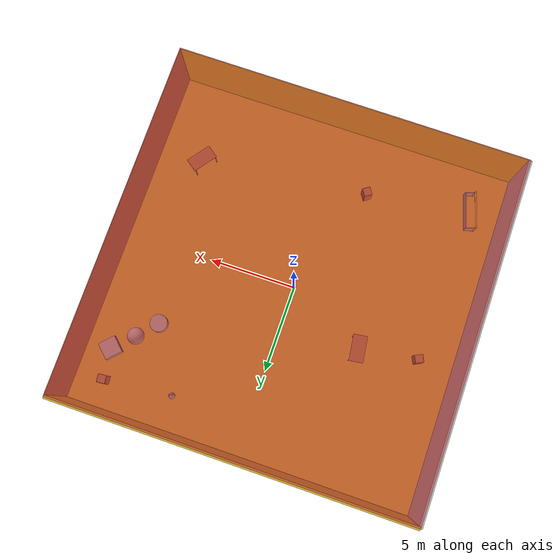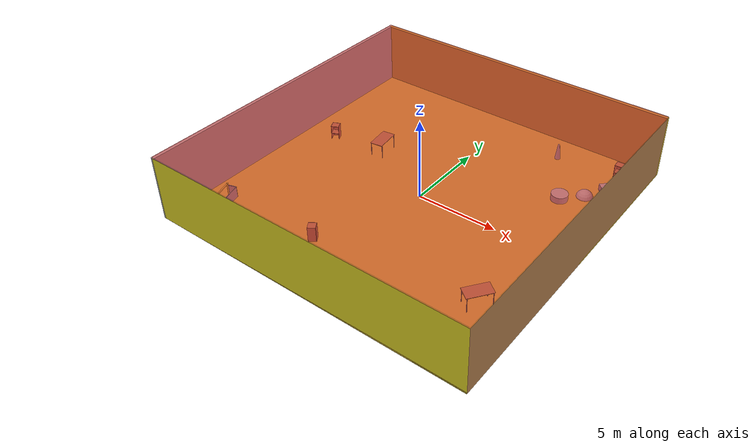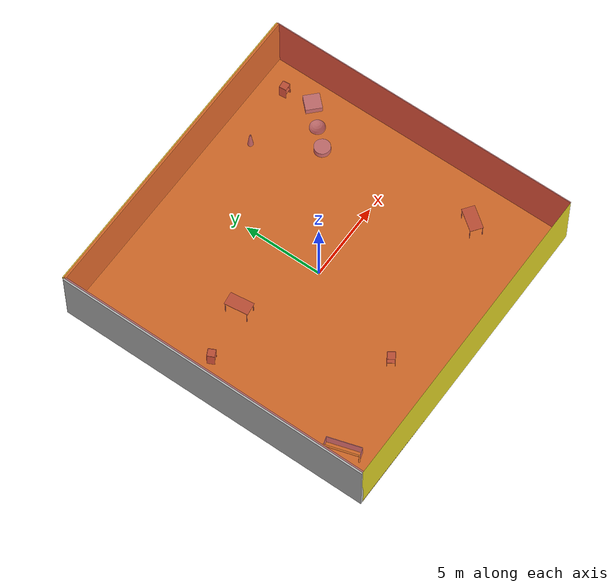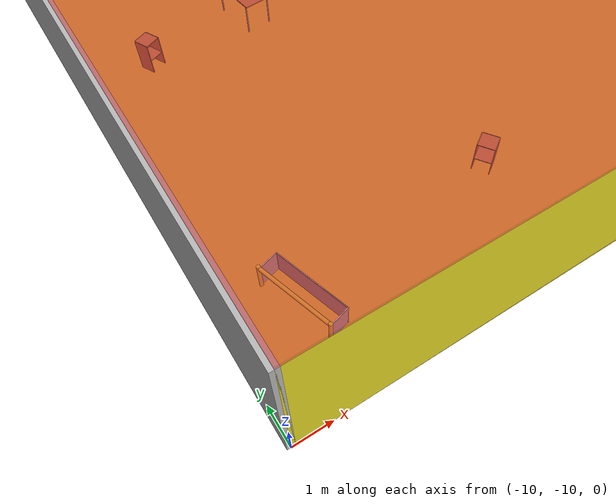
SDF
<sdf version="1.4">
 <world name="default">
  <physics type="ode">
   <max_step_size>0.001</max_step_size>
   <real_time_factor>1</real_time_factor>
   <real_time_update_rate>1000</real_time_update_rate>
   <gravity>0 0 -9.8</gravity>
  </physics>
  <scene><ambient>0.4 0.4 0.4 1</ambient><background>0.7 0.7 0.7 1</background><shadows>1</shadows></scene>
  <model name="Surrounding">
   <static>1</static>
   <link name="Ceiling">
    <collision name="Ceiling_Collision"><geometry><box><size>20 20 0.1</size></box></geometry></collision>
    <visual name="Ceiling_Visual">
     <geometry><box><size>20 20 0.1</size></box></geometry>
     <material>
      <script><uri>file://media/materials/scripts/gazebo.material</uri><name>Gazebo/RedTransparent</name></script>
     </material>
    </visual>
    <pose>0 0 4.05 0 0 0</pose>
   </link>
   <link name="Wall_South">
    <collision name="Wall_South_Collision">
     <geometry><box><size>20 0 4</size></box></geometry>
     <pose>0 0 2 0 -0 0</pose>
    </collision>
    <visual name="Wall_South_Visual">
     <pose>0 0 2 0 -0 0</pose>
     <geometry><box><size>20 0 4</size></box></geometry>
     <material>
      <script><uri>file://media/materials/scripts/gazebo.material</uri><name>Gazebo/YellowGlow</name></script>
     </material>
    </visual>
    <velocity_decay><linear>0</linear><angular>0</angular></velocity_decay>
    <pose>0 -10 0 0 -0 0</pose>
   </link>
   <link name="Wall_East">
    <collision name="Wall_21_Collision">
     <geometry><box><size>20 0 4</size></box></geometry>
     <pose>0 0 2 0 -0 0</pose>
    </collision>
    <visual name="Wall_21_Visual">
     <pose>0 0 2 0 -0 0</pose>
     <geometry><box><size>20 0 4</size></box></geometry>
     <material>
      <script><uri>file://media/materials/scripts/gazebo.material</uri><name>Gazebo/Wood</name></script>
     </material>
    </visual>
    <velocity_decay><linear>0</linear><angular>0</angular></velocity_decay>
    <pose>10 0 0 0 -0 1.5708</pose>
   </link>
   <link name="Wall_North">
    <collision name="Wall_22_Collision">
     <geometry><box><size>20 0.2 4</size></box></geometry>
     <pose>0 0 2 0 -0 0</pose>
    </collision>
    <visual name="Wall_22_Visual">
     <pose>0 0 2 0 -0 0</pose>
     <geometry><box><size>20 0.2 4</size></box></geometry>
     <material>
      <script><uri>file://media/materials/scripts/gazebo.material</uri><name>Gazebo/Gold</name></script>
     </material>
    </visual>
    <velocity_decay><linear>0</linear><angular>0</angular></velocity_decay>
    <pose>0 10 0 0 -0 0</pose>
   </link>
   <link name="Wall_West">
    <collision name="Wall_23_Collision">
     <geometry><box><size>20 0.2 4</size></box></geometry>
     <pose>0 0 2 0 -0 0</pose>
    </collision>
    <visual name="Wall_23_Visual">
     <pose>0 0 2 0 -0 0</pose>
     <geometry><box><size>20 0.2 4</size></box></geometry>
     <material>
      <script><uri>file://media/materials/scripts/gazebo.material</uri><name>Gazebo/LightOn</name></script>
     </material>
    </visual>
    <velocity_decay><linear>0</linear><angular>0</angular></velocity_decay>
    <pose>-10 0 0 0 0 -1.5708</pose>
   </link>
   <link name="Ground_link">
    <collision name="collision">
     <pose>0 0 .05 0 -0 0</pose>
     <geometry><box><size>20 20 0.1</size></box></geometry>
    </collision>
    <visual name="visual">
     <pose>0 0 .05 0 -0 0</pose>
     <geometry><box><size>20 20 0.1</size></box></geometry>
     <material>
      <script><uri>file://media/materials/scripts/gazebo.material</uri><name>Gazebo/Gold</name></script>
     </material>
    </visual>
   </link>
   <static>1</static>
  </model>
  <spherical_coordinates>
   <surface_model>EARTH_WGS84</surface_model>
   <latitude_deg>0</latitude_deg>
   <longitude_deg>0</longitude_deg>
   <elevation>0</elevation>
   <heading_deg>0</heading_deg>
  </spherical_coordinates>
  <light name="lightball_0" type="diffuse">
   <diffuse>0.8 0.8 0.8 1</diffuse>
   <specular>0.2 0.2 0.2 1</specular>
   <attenuation>
    <range>100</range>
    <constant>0.7</constant>
    <linear>0.01</linear>
    <quadratic>0.001</quadratic>
   </attenuation>
   <direction>-0.5 0.1 -0.9</direction>
   <pose>-1.63454048266 -7.53697140778 1.34247763556 0 0 0</pose>
  </light>
  <light name="lightball_1" type="diffuse">
   <diffuse>0.8 0.8 0.8 1</diffuse>
   <specular>0.2 0.2 0.2 1</specular>
   <attenuation>
    <range>100</range>
    <constant>0.7</constant>
    <linear>0.01</linear>
    <quadratic>0.001</quadratic>
   </attenuation>
   <direction>-0.5 0.1 -0.9</direction>
   <pose>-6.0849434406 -0.392330261881 1.35179535753 0 0 0</pose>
  </light>
  <light name="lightball_2" type="diffuse">
   <diffuse>0.8 0.8 0.8 1</diffuse>
   <specular>0.2 0.2 0.2 1</specular>
   <attenuation>
    <range>100</range>
    <constant>0.7</constant>
    <linear>0.01</linear>
    <quadratic>0.001</quadratic>
   </attenuation>
   <direction>-0.5 0.1 -0.9</direction>
   <pose>3.06248807166 9.5157088305 1.03009605406 0 0 0</pose>
  </light>
  <light name="lightball_3" type="diffuse">
   <diffuse>0.8 0.8 0.8 1</diffuse>
   <specular>0.2 0.2 0.2 1</specular>
   <attenuation>
    <range>100</range>
    <constant>0.7</constant>
    <linear>0.01</linear>
    <quadratic>0.001</quadratic>
   </attenuation>
   <direction>-0.5 0.1 -0.9</direction>
   <pose>1.50288727458 9.01135682658 0.620757714662 0 0 0</pose>
  </light>
  <include>
   <uri>model://robocup_3Dsim_goal</uri>
   <pose>-8.44672269293 -7.52006601898 0 0 0 0.290277374641</pose>
  </include>
  <include><uri>model://cabinet</uri><pose>-7.85634140262 1.66252143991 0 0 0 2.01903509168</pose></include>
  <include><uri>model://table</uri><pose>-4.51521155032 2.20615883655 0 0 0 1.70096384555</pose></include>
  <include><uri>model://cabinet</uri><pose>-2.23922574716 -6.49854035644 0 0 0 0.592139168595</pose></include>
  <include>
   <uri>model://construction_cone</uri>
   <pose>4.46911655771 7.97699380338 0 0 0 0.636105110692</pose>
  </include>
  <include><uri>model://table</uri><pose>7.41986946066 -5.31826149283 0 0 0 0.935524275305</pose></include>
  <include>
   <uri>model://textured_shapes</uri>
   <pose>7.57299381736 5.49570159813 0 0 0 2.37588705316</pose>
  </include>
  <include><uri>model://cabinet</uri><pose>8.30393124641 8.32187423832 0 0 0 1.6519746653</pose></include>
 </world>
</sdf>

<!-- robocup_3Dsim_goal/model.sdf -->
<sdf version="1.5">
  <model name="robocup_3d_goal">
    <static>true</static>
    <link name="left_post">
      <pose>0 1.05 0.45 0 0 0</pose>
      <collision name="collision">
        <geometry>
          <cylinder>
            <radius>0.05</radius>
            <length>0.9</length>
          </cylinder>
        </geometry>
      </collision>
      <visual name="visual">
        <geometry>
          <cylinder>
            <radius>0.05</radius>
            <length>0.9</length>
          </cylinder>
        </geometry>
        <material>
          <script>
            <uri>file://media/materials/scripts/gazebo.material</uri>
            <name>Gazebo/ZincYellow</name>
          </script>
        </material>
      </visual>
    </link>
    <link name="left_support_horiz_lower">
      <pose>0.30 1.05 0.01 0 0 0</pose>
      <collision name="collision">
        <geometry>
          <box>
            <size>0.50 0.02 0.02</size>
          </box>
        </geometry>
      </collision>
      <visual name="visual">
        <geometry>
          <box>
            <size>0.50 0.02 0.02</size>
          </box>
        </geometry>
        <material>
          <script>
            <uri>file://media/materials/scripts/gazebo.material</uri>
            <name>Gazebo/White</name>
          </script>
        </material>
      </visual>
    </link>
    <link name="left_support_horiz_upper">
      <pose>0.30 1.05 0.79 0 0 0</pose>
      <collision name="collision">
        <geometry>
          <box>
            <size>0.50 0.02 0.02</size>
          </box>
        </geometry>
      </collision>
      <visual name="visual">
        <geometry>
          <box>
            <size>0.50 0.02 0.02</size>
          </box>
        </geometry>
        <material>
          <script>
            <uri>file://media/materials/scripts/gazebo.material</uri>
            <name>Gazebo/White</name>
          </script>
        </material>
      </visual>
    </link>
    <link name="left_support_vertical">
      <pose>0.56 1.05 0.4 0 1.5708 0</pose>
      <collision name="collision">
        <geometry>
          <box>
            <size>0.80 0.02 0.02</size>
          </box>
        </geometry>
      </collision>
      <visual name="visual">
        <geometry>
          <box>
            <size>0.80 0.02 0.02</size>
          </box>
        </geometry>
        <material>
          <script>
            <uri>file://media/materials/scripts/gazebo.material</uri>
            <name>Gazebo/White</name>
          </script>
        </material>
      </visual>
    </link>
    <link name="right_support_horiz_lower">
      <pose>0.30 -1.05 0.01 0 0 0</pose>
      <collision name="collision">
        <geometry>
          <box>
            <size>0.50 0.02 0.02</size>
          </box>
        </geometry>
      </collision>
      <visual name="visual">
        <geometry>
          <box>
            <size>0.50 0.02 0.02</size>
          </box>
        </geometry>
        <material>
          <script>
            <uri>file://media/materials/scripts/gazebo.material</uri>
            <name>Gazebo/White</name>
          </script>
        </material>
      </visual>
    </link>
    <link name="right_support_horiz_upper">
      <pose>0.30 -1.05 0.79 0 0 0</pose>
      <collision name="collision">
        <geometry>
          <box>
            <size>0.50 0.02 0.02</size>
          </box>
        </geometry>
      </collision>
      <visual name="visual">
        <geometry>
          <box>
            <size>0.50 0.02 0.02</size>
          </box>
        </geometry>
        <material>
          <script>
            <uri>file://media/materials/scripts/gazebo.material</uri>
            <name>Gazebo/White</name>
          </script>
        </material>
      </visual>
    </link>
    <link name="right_support_vertical">
      <pose>0.56 -1.05 0.4 0 1.5708 0</pose>
      <collision name="collision">
        <geometry>
          <box>
            <size>0.80 0.02 0.02</size>
          </box>
        </geometry>
      </collision>
      <visual name="visual">
        <geometry>
          <box>
            <size>0.80 0.02 0.02</size>
          </box>
        </geometry>
        <material>
          <script>
            <uri>file://media/materials/scripts/gazebo.material</uri>
            <name>Gazebo/White</name>
          </script>
        </material>
      </visual>
    </link>
    <link name="center_support_horiz_lower">
      <pose>0.56 0 0.01 0 1.5708 0</pose>
      <collision name="collision">
        <geometry>
          <box>
            <size>0.02 2.08 0.02</size>
          </box>
        </geometry>
      </collision>
      <visual name="visual">
        <geometry>
          <box>
            <size>0.02 2.08 0.02</size>
          </box>
        </geometry>
        <material>
          <script>
            <uri>file://media/materials/scripts/gazebo.material</uri>
            <name>Gazebo/White</name>
          </script>
        </material>
      </visual>
    </link>
    <link name="center_support_horiz_upper">
      <pose>0.56 0 0.79 0 1.5708 0</pose>
      <collision name="collision">
        <geometry>
          <box>
            <size>0.02 2.08 0.02</size>
          </box>
        </geometry>
      </collision>
      <visual name="visual">
        <geometry>
          <box>
            <size>0.02 2.08 0.02</size>
          </box>
        </geometry>
        <material>
          <script>
            <uri>file://media/materials/scripts/gazebo.material</uri>
            <name>Gazebo/White</name>
          </script>
        </material>
      </visual>
    </link>
    <link name="right_post">
      <pose>0 -1.05 0.45 0 0 0</pose>
      <collision name="collision">
        <geometry>
          <cylinder>
            <radius>0.05</radius>
            <length>0.9</length>
          </cylinder>
        </geometry>
      </collision>
      <visual name="visual">
        <geometry>
          <cylinder>
            <radius>0.05</radius>
            <length>0.9</length>
          </cylinder>
        </geometry>
        <material>
          <script>
            <uri>file://media/materials/scripts/gazebo.material</uri>
            <name>Gazebo/ZincYellow</name>
          </script>
        </material>
      </visual>
    </link>
    <link name="crossbar">
      <pose>0 0 0.85 1.57 1.57 0</pose>
      <collision name="collision">
        <geometry>
          <cylinder>
            <radius>0.05</radius>
            <length>2.0</length>
          </cylinder>
        </geometry>
      </collision>
      <visual name="visual">
        <geometry>
          <cylinder>
            <radius>0.05</radius>
            <length>2.0</length>
          </cylinder>
        </geometry>
        <material>
          <script>
            <uri>file://media/materials/scripts/gazebo.material</uri>
            <name>Gazebo/ZincYellow</name>
          </script>
        </material>
      </visual>
    </link>
    <link name="center_net">
      <pose>0.56 0 0.40 0 0 0</pose>
      <collision name="collision">
        <geometry>
          <box>
            <size>0.01 2.1 0.80</size>
          </box>
        </geometry>
      </collision>
      <visual name="visual">
        <geometry>
          <box>
            <size>0.01 2.1 0.80</size>
          </box>
        </geometry>
        <material>
          <script>
            <uri>model://../model_source/models/robocup09_spl_field/materials/scripts/</uri>
            <uri>model://../model_source/models/robocup09_spl_field/materials/textures/</uri>
            <name>RoboCup/Net</name>
          </script>
        </material>
      </visual>
    </link>
    <link name="left_net">
      <pose>0.30 1.05 0.40 0 0 0</pose>
      <collision name="collision">
        <geometry>
          <box>
            <size>0.50 0.01 0.76</size>
          </box>
        </geometry>
      </collision>
      <visual name="visual">
        <geometry>
          <box>
            <size>0.50 0.01 0.76</size>
          </box>
        </geometry>
        <material>
          <script>
            <uri>model://../model_source/models/robocup09_spl_field/materials/scripts/</uri>
            <uri>model://../model_source/models/robocup09_spl_field/materials/textures/</uri>
            <name>RoboCup/Net</name>
          </script>
        </material>
      </visual>
    </link>
    <link name="right_net">
      <pose>0.30 -1.05 0.40 0 0 0</pose>
      <collision name="collision">
        <geometry>
          <box>
            <size>0.50 0.01 0.76</size>
          </box>
        </geometry>
      </collision>
      <visual name="visual">
        <geometry>
          <box>
            <size>0.50 0.01 0.76</size>
          </box>
        </geometry>
        <material>
          <script>
            <uri>model://../model_source/models/robocup09_spl_field/materials/scripts/</uri>
            <uri>model://../model_source/models/robocup09_spl_field/materials/textures/</uri>
            <name>RoboCup/Net</name>
          </script>
        </material>
      </visual>
    </link>
  </model>
</sdf>

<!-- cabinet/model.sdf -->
<sdf version="1.5">
  <model name="cabinet">
    <static>true</static>
    <link name="cabinet_bottom_plate">
      <inertial>
        <pose>0 0 -1 0 0 0</pose>
        <inertia>
          <ixx>2.050000</ixx>
          <ixy>0</ixy>
          <ixz>0</ixz>
          <iyy>2.050000</iyy>
          <iyz>0</iyz>
          <izz>2.050000</izz>
        </inertia>
        <mass>25.000000</mass>
      </inertial>
      <collision name="cabinet_bottom_plate_geom">
        <pose>0 0 0.010000 0 0 0</pose>
        <geometry>
          <box>
            <size>0.450000 0.450000 0.020000</size>
          </box>
        </geometry>
      </collision>
      <visual name="cabinet_bottom_plate_geom_visual">
        <pose>0 0 0.010000 0 0 0</pose>
        <geometry>
          <box>
            <size>0.450000 0.450000 0.020000</size>
          </box>
        </geometry>
        <material>
          <script>
            <uri>model://media/materials/scripts/gazebo.material</uri>
            <name>Gazebo/Wood</name>
          </script>
        </material>
      </visual>
      <collision name="cabinet_bottom_plate_geom_cabinet_back_plate">
        <pose>0.235000 0 0.510000 0 0 0</pose>
        <geometry>
          <box>
            <size>0.020000 0.450000 1.020000</size>
          </box>
        </geometry>
      </collision>
      <visual name="cabinet_bottom_plate_geom_cabinet_back_plate_visual">
        <pose>0.235000 0 0.510000 0 0 0</pose>
        <geometry>
          <box>
            <size>0.020000 0.450000 1.020000</size>
          </box>
        </geometry>
        <material>
          <script>
            <uri>model://media/materials/scripts/gazebo.material</uri>
            <name>Gazebo/Wood</name>
          </script>
        </material>
      </visual>
      <collision name="cabinet_bottom_plate_geom_cabinet_left_plate">
        <pose>0 0.235000 0.510000 0 0 0</pose>
        <geometry>
          <box>
            <size>0.450000 0.020000 1.020000</size>
          </box>
        </geometry>
      </collision>
      <visual name="cabinet_bottom_plate_geom_cabinet_left_plate_visual">
        <pose>0 0.235000 0.510000 0 0 0</pose>
        <geometry>
          <box>
            <size>0.450000 0.020000 1.020000</size>
          </box>
        </geometry>
        <material>
          <script>
            <uri>model://media/materials/scripts/gazebo.material</uri>
            <name>Gazebo/Wood</name>
          </script>
        </material>
      </visual>
      <collision name="cabinet_bottom_plate_geom_cabinet_middle_plate">
        <pose>0 0 0.510000 0 0 0</pose>
        <geometry>
          <box>
            <size>0.450000 0.450000 0.020000</size>
          </box>
        </geometry>
      </collision>
      <visual name="cabinet_bottom_plate_geom_cabinet_middle_plate_visual">
        <pose>0 0 0.510000 0 0 0</pose>
        <geometry>
          <box>
            <size>0.450000 0.450000 0.020000</size>
          </box>
        </geometry>
        <material>
          <script>
            <uri>model://media/materials/scripts/gazebo.material</uri>
            <name>Gazebo/Wood</name>
          </script>
        </material>
      </visual>
      <collision name="cabinet_bottom_plate_geom_cabinet_right_plate">
        <pose>0 -0.235000 0.510000 0 0 0</pose>
        <geometry>
          <box>
            <size>0.450000 0.020000 1.020000</size>
          </box>
        </geometry>
      </collision>
      <visual name="cabinet_bottom_plate_geom_cabinet_right_plate_visual">
        <pose>0 -0.235000 0.510000 0 0 0</pose>
        <geometry>
          <box>
            <size>0.450000 0.020000 1.020000</size>
          </box>
        </geometry>
        <material>
          <script>
            <uri>model://media/materials/scripts/gazebo.material</uri>
            <name>Gazebo/Wood</name>
          </script>
        </material>
      </visual>
      <collision name="cabinet_bottom_plate_geom_cabinet_top_plate">
        <pose>0 0 1.010000 0 0 0</pose>
        <geometry>
          <box>
            <size>0.450000 0.450000 0.020000</size>
          </box>
        </geometry>
      </collision>
      <visual name="cabinet_bottom_plate_geom_cabinet_top_plate_visual">
        <pose>0 0 1.010000 0 0 0</pose>
        <geometry>
          <box>
            <size>0.450000 0.450000 0.020000</size>
          </box>
        </geometry>
        <material>
          <script>
            <uri>model://media/materials/scripts/gazebo.material</uri>
            <name>Gazebo/Wood</name>
          </script>
        </material>
      </visual>
    </link>
  </model>
</sdf>

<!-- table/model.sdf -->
<sdf version="1.5">
  <model name="table">
    <static>true</static>
    <link name="link">
      <collision name="surface">
        <pose>0 0 1.0 0 0 0</pose>
        <geometry>
          <box>
            <size>1.5 0.8 0.03</size>
          </box>
        </geometry>
        <surface>
          <friction>
            <ode>
              <mu>0.6</mu>
              <mu2>0.6</mu2>
            </ode>
          </friction>
        </surface>
      </collision>
      <visual name="visual1">
        <pose>0 0 1.0 0 0 0</pose>
        <geometry>
          <box>
            <size>1.5 0.8 0.03</size>
          </box>
        </geometry>
        <material>
          <script>
            <uri>model://media/materials/scripts/gazebo.material</uri>
            <name>Gazebo/Wood</name>
          </script>
        </material>
      </visual>
      <collision name="front_left_leg">
        <pose>0.68 0.38 0.5 0 0 0</pose>
        <geometry>
          <cylinder>
            <radius>0.02</radius>
            <length>1.0</length>
          </cylinder>
        </geometry>
      </collision>
      <visual name="front_left_leg">
        <pose>0.68 0.38 0.5 0 0 0</pose>
        <geometry>
          <cylinder>
            <radius>0.02</radius>
            <length>1.0</length>
          </cylinder>
        </geometry>
        <material>
          <script>
            <uri>model://media/materials/scripts/gazebo.material</uri>
            <name>Gazebo/Grey</name>
          </script>
        </material>
      </visual>
      <collision name="front_right_leg">
        <pose>0.68 -0.38 0.5 0 0 0</pose>
        <geometry>
          <cylinder>
            <radius>0.02</radius>
            <length>1.0</length>
          </cylinder>
        </geometry>
      </collision>
      <visual name="front_right_leg">
        <pose>0.68 -0.38 0.5 0 0 0</pose>
        <geometry>
          <cylinder>
            <radius>0.02</radius>
            <length>1.0</length>
          </cylinder>
        </geometry>
        <material>
          <script>
            <uri>model://media/materials/scripts/gazebo.material</uri>
            <name>Gazebo/Grey</name>
          </script>
        </material>
      </visual>
      <collision name="back_right_leg">
        <pose>-0.68 -0.38 0.5 0 0 0</pose>
        <geometry>
          <cylinder>
            <radius>0.02</radius>
            <length>1.0</length>
          </cylinder>
        </geometry>
      </collision>
      <visual name="back_right_leg">
        <pose>-0.68 -0.38 0.5 0 0 0</pose>
        <geometry>
          <cylinder>
            <radius>0.02</radius>
            <length>1.0</length>
          </cylinder>
        </geometry>
        <material>
          <script>
            <uri>model://media/materials/scripts/gazebo.material</uri>
            <name>Gazebo/Grey</name>
          </script>
        </material>
      </visual>
      <collision name="back_left_leg">
        <pose>-0.68 0.38 0.5 0 0 0</pose>
        <geometry>
          <cylinder>
            <radius>0.02</radius>
            <length>1.0</length>
          </cylinder>
        </geometry>
      </collision>
      <visual name="back_left_leg">
        <pose>-0.68 0.38 0.5 0 0 0</pose>
        <geometry>
          <cylinder>
            <radius>0.02</radius>
            <length>1.0</length>
          </cylinder>
        </geometry>
        <material>
          <script>
            <uri>model://media/materials/scripts/gazebo.material</uri>
            <name>Gazebo/Grey</name>
          </script>
        </material>
      </visual>
    </link>
  </model>
</sdf>

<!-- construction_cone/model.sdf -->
<sdf version="1.5">
  <model name="Construction Cone">
    <link name="link">
      <collision name="collision">
        <geometry>
          <mesh>
            <scale>10 10 10</scale>
            <uri>file://isr-testbed/construction_cone/meshes/construction_cone.dae</uri>
          </mesh>
        </geometry>
      </collision>
      <visual name="visual">
        <geometry>
          <mesh>
            <scale>10 10 10</scale>
            <uri>file://isr-testbed/construction_cone/meshes/construction_cone.dae</uri>
          </mesh>
        </geometry>
      </visual>
    </link>
  </model>
</sdf>

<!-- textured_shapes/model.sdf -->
<sdf version="1.6">
  <model name="textured_shapes">
    <pose>0 0 0.5 0 0 0</pose>
    <link name="box">
      <pose>0 -1.5 0 0 0 0</pose>
      <collision name="collision">
        <geometry>
          <box>
            <size>1 1 1</size>
          </box>
        </geometry>
      </collision>
      <visual name="visual">
        <geometry>
          <box>
            <size>1 1 1</size>
          </box>
        </geometry>
        <material>
          <script>
            <uri>model://../model_source/models/textured_shapes/materials/scripts</uri>
            <uri>model://../model_source/models/textured_shapes/materials/textures</uri>
            <name>TexturedShape/Squares</name>
          </script>
        </material>
      </visual>
    </link>
    <link name="sphere">
      <collision name="collision">
        <geometry>
          <sphere>
            <radius>0.5</radius>
          </sphere>
        </geometry>
      </collision>
      <visual name="visual">
        <geometry>
          <sphere>
            <radius>0.5</radius>
          </sphere>
        </geometry>
        <material>
          <script>
            <uri>model://../model_source/models/textured_shapes/materials/scripts</uri>
            <uri>model://../model_source/models/textured_shapes/materials/textures</uri>
            <name>TexturedShape/Squares</name>
          </script>
        </material>
      </visual>
    </link>
    <link name="cylinder">
      <pose>0 1.5 0 0 0 0</pose>
      <collision name="collision">
        <geometry>
          <cylinder>
            <radius>0.5</radius>
            <length>1</length>
          </cylinder>
        </geometry>
      </collision>
      <visual name="visual">
        <geometry>
          <cylinder>
            <radius>0.5</radius>
            <length>1</length>
          </cylinder>
        </geometry>
        <material>
          <script>
            <uri>model://../model_source/models/textured_shapes/materials/scripts</uri>
            <uri>model://../model_source/models/textured_shapes/materials/textures</uri>
            <name>TexturedShape/Squares</name>
          </script>
        </material>
      </visual>
    </link>
  </model>
</sdf>
